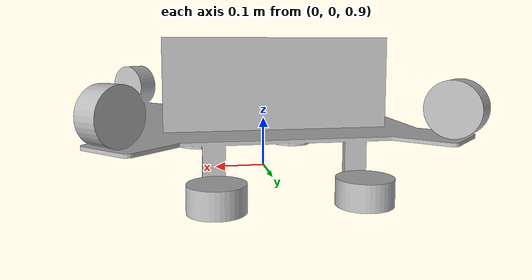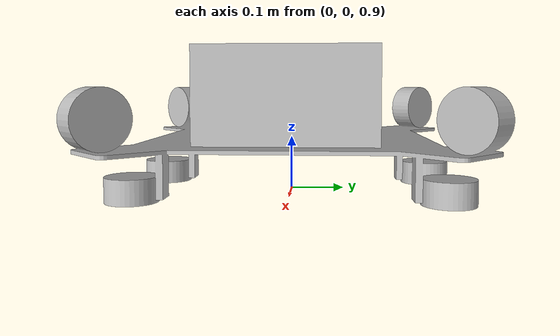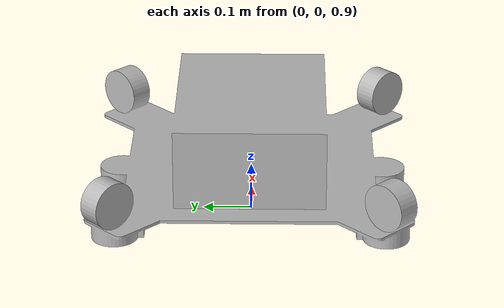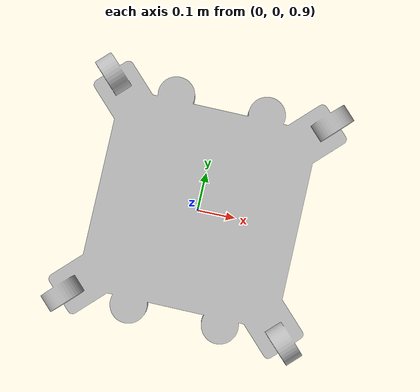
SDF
<?xml version='1.0'?>
<sdf version="1.4">
  <model name="Alfie">
    <pose>0 0 1 0 0 0</pose>
    <static>true</static>
    <link name="base_link">
      <inertial>
        <mass>1.0</mass>
        <inertia> <!-- inertias are tricky to compute -->
          <!-- http://gazebosim.org/tutorials?tut=inertia&cat=build_robot -->
          <ixx>0.083</ixx>       <!-- for a box: ixx = 0.083 * mass * (y*y + z*z) -->
          <ixy>0.0</ixy>         <!-- for a box: ixy = 0 -->
          <ixz>0.0</ixz>         <!-- for a box: ixz = 0 -->
          <iyy>0.083</iyy>       <!-- for a box: iyy = 0.083 * mass * (x*x + z*z) -->
          <iyz>0.0</iyz>         <!-- for a box: iyz = 0 -->
          <izz>0.083</izz>       <!-- for a box: izz = 0.083 * mass * (x*x + y*y) -->
        </inertia>
      </inertial>
      <collision name="collision">
        <geometry>
          <mesh>
            <scale>0.001 0.001 0.001</scale>
            <uri>model://models/alfie/meshes/Sim_Assembly.STL</uri>
          </mesh>
        </geometry>
      </collision>
      <visual name="visual">
        <geometry>
          <mesh>
            <uri>model://models/alfie/meshes/AlfieVisual.STL</uri>
          </mesh>
        </geometry>
      </visual>
    </link>
  </model>
</sdf>
